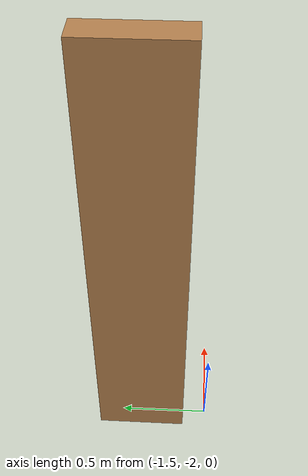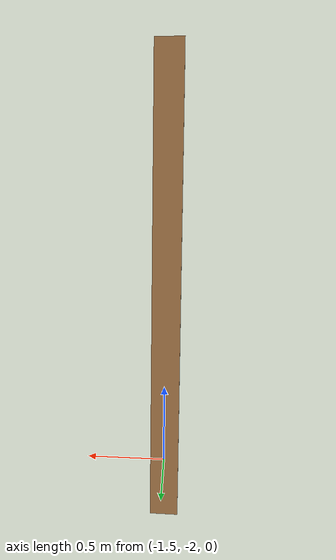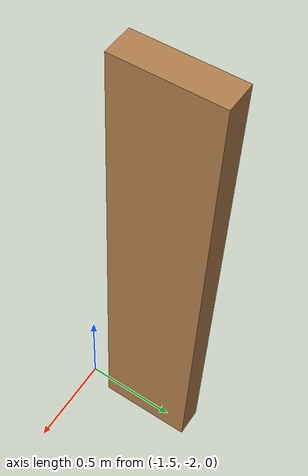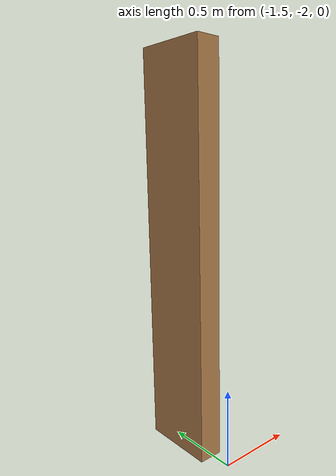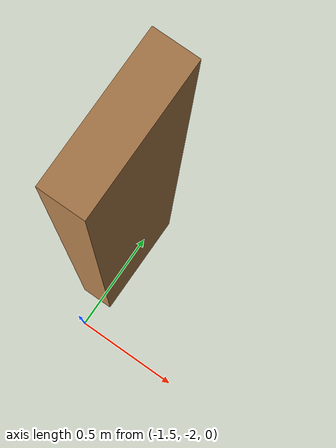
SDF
<?xml version='1.0'?>
<sdf version='1.6'>
  <model name='walllitle'>
    <pose frame=''>-1.52 -1.615 0 0 -0 0</pose>
    <link name='Wall_0'>
      <collision name='Wall_0_Collision'>
        <geometry>
          <box>
            <size>0.5 0.15 2.5</size>
          </box>
        </geometry>
        <pose frame=''>0 0 1.25 0 -0 0</pose>
      </collision>
      <visual name='Wall_0_Visual'>
        <pose frame=''>0 0 1.25 0 -0 0</pose>
        <geometry>
          <box>
            <size>0.5 0.15 2.5</size>
          </box>
        </geometry>
        <material>
          <script>
            <uri>file://media/materials/scripts/gazebo.material</uri>
            <name>Gazebo/Wood</name>
          </script>
          <ambient>1 1 1 1</ambient>
        </material>
        <meta>
          <layer>0</layer>
        </meta>
      </visual>
      <pose frame=''>0 0 0 0 -0 -1.5708</pose>
    </link>
    <static>1</static>
  </model>
</sdf>
